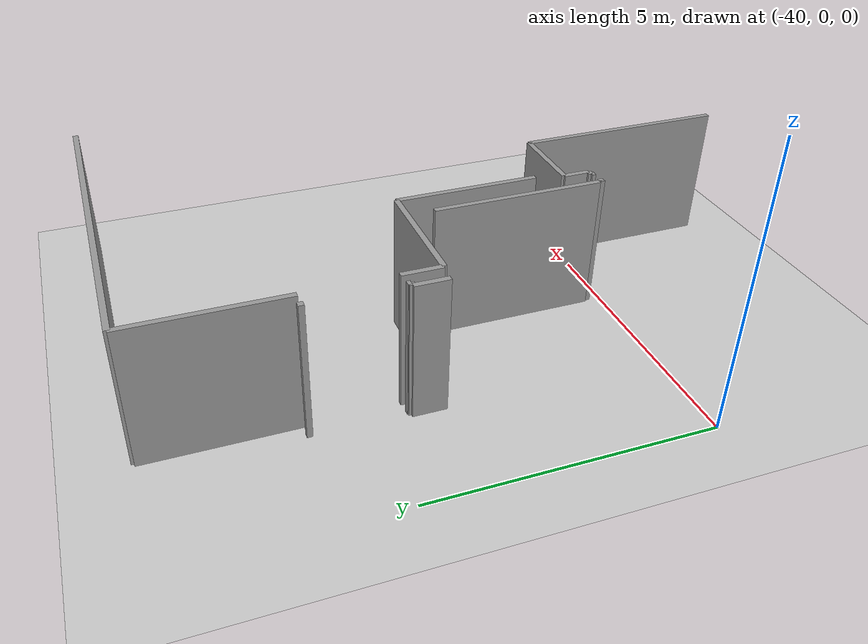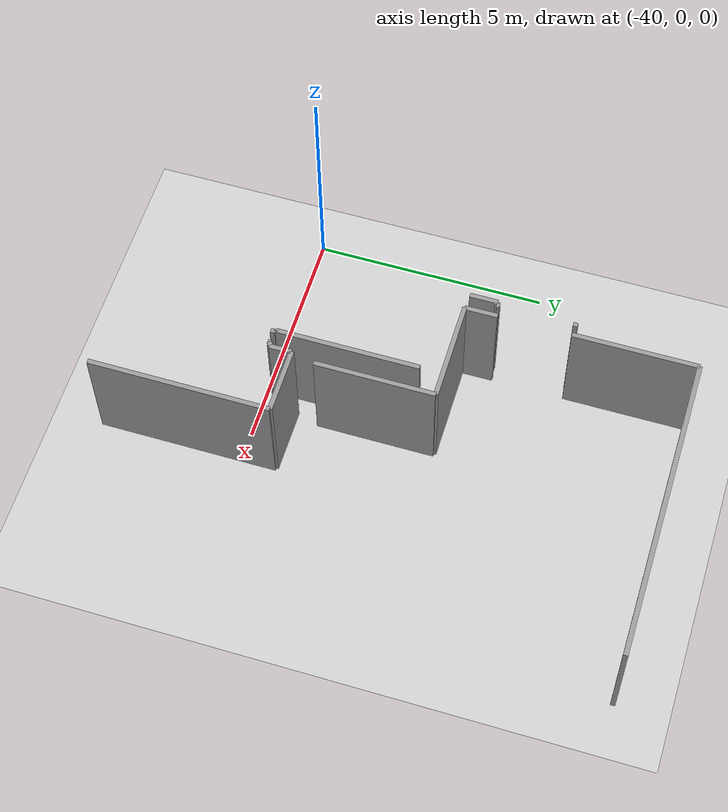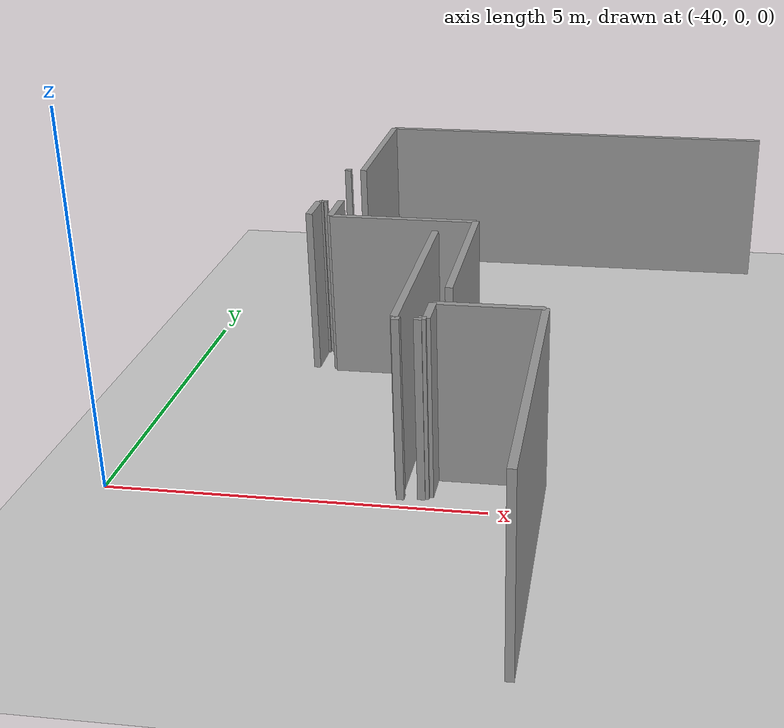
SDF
<sdf version="1.6">
 <world name="default">
  <model name="ground_plane">
   <static>1</static>
   <link name="link">
    <collision name="collision">
     <geometry><plane><normal>0 0 1</normal><size>100 100</size></plane></geometry>
     <surface><friction><ode><mu>100</mu><mu2>50</mu2></ode></friction></surface>
    </collision>
    <visual name="visual">
     <cast_shadows>0</cast_shadows>
     <geometry><plane><normal>0 0 1</normal><size>100 100</size></plane></geometry>
     <material>
      <script><uri>file://media/materials/scripts/gazebo.material</uri><name>Gazebo/Grey</name></script>
     </material>
    </visual>
   </link>
  </model>
  <model name="0510032258_A_40_1_105">
   <static>1</static>
   <link name="Wall_4">
    <collision name="Wall_4_Collision">
     <geometry><box><size>0.0973168004879 0.1 2.5</size></box></geometry>
     <pose>0.0486584002439 0 1.25 0 0 0</pose>
    </collision>
    <visual name="Wall_4_Visual">
     <pose>0.0486584002439 0 1.25 0 0 0</pose>
     <geometry><box><size>0.0973168004879 0.1 2.5</size></box></geometry>
     <material>
      <script><uri>file://media/materials/scripts/gazebo.material</uri><name>Gazebo/Grey</name></script>
      <ambient>1 1 1 1</ambient>
     </material>
    </visual>
    <pose>9.83420571196 -7.00312531761 0 0 0 -1.57079632679</pose>
   </link>
   <link name="Wall_5">
    <collision name="Wall_5_Collision">
     <geometry><box><size>0.0628874885659 0.1 2.5</size></box></geometry>
     <pose>0.031443744283 0 1.25 0 0 0</pose>
    </collision>
    <visual name="Wall_5_Visual">
     <pose>0.031443744283 0 1.25 0 0 0</pose>
     <geometry><box><size>0.0628874885659 0.1 2.5</size></box></geometry>
     <material>
      <script><uri>file://media/materials/scripts/gazebo.material</uri><name>Gazebo/Grey</name></script>
      <ambient>1 1 1 1</ambient>
     </material>
    </visual>
    <pose>9.83420571196 -8.65179388149 0 0 0 -1.57079632679</pose>
   </link>
   <link name="Wall_6">
    <collision name="Wall_6_Collision">
     <geometry><box><size>0.0802927126741 0.1 2.5</size></box></geometry>
     <pose>0.040146356337 0 1.25 0 0 0</pose>
    </collision>
    <visual name="Wall_6_Visual">
     <pose>0.040146356337 0 1.25 0 0 0</pose>
     <geometry><box><size>0.0802927126741 0.1 2.5</size></box></geometry>
     <material>
      <script><uri>file://media/materials/scripts/gazebo.material</uri><name>Gazebo/Grey</name></script>
      <ambient>1 1 1 1</ambient>
     </material>
    </visual>
    <pose>9.83420571196 -8.71468137006 0 0 0 3.14159265359</pose>
   </link>
   <link name="Wall_7">
    <collision name="Wall_7_Collision">
     <geometry><box><size>0.596859436935 0.1 2.5</size></box></geometry>
     <pose>0.298429718467 0 1.25 0 0 0</pose>
    </collision>
    <visual name="Wall_7_Visual">
     <pose>0.298429718467 0 1.25 0 0 0</pose>
     <geometry><box><size>0.596859436935 0.1 2.5</size></box></geometry>
     <material>
      <script><uri>file://media/materials/scripts/gazebo.material</uri><name>Gazebo/Grey</name></script>
      <ambient>1 1 1 1</ambient>
     </material>
    </visual>
    <pose>9.75391299929 -8.71468137006 0 0 0 -1.57079632679</pose>
   </link>
   <link name="Wall_24">
    <collision name="Wall_24_Collision">
     <geometry><box><size>3.06154080699 0.1 2.5</size></box></geometry>
     <pose>1.5307704035 0 1.25 0 0 0</pose>
    </collision>
    <visual name="Wall_24_Visual">
     <pose>1.5307704035 0 1.25 0 0 0</pose>
     <geometry><box><size>3.06154080699 0.1 2.5</size></box></geometry>
     <material>
      <script><uri>file://media/materials/scripts/gazebo.material</uri><name>Gazebo/Grey</name></script>
      <ambient>1 1 1 1</ambient>
     </material>
    </visual>
    <pose>11.7200680964 -9.80371480842 0 0 0 -1.57079632679</pose>
   </link>
   <link name="Wall_25">
    <collision name="Wall_25_Collision">
     <geometry><box><size>0.029601585527 0.1 2.5</size></box></geometry>
     <pose>0.0148007927635 0 1.25 0 0 0</pose>
    </collision>
    <visual name="Wall_25_Visual">
     <pose>0.0148007927635 0 1.25 0 0 0</pose>
     <geometry><box><size>0.029601585527 0.1 2.5</size></box></geometry>
     <material>
      <script><uri>file://media/materials/scripts/gazebo.material</uri><name>Gazebo/Grey</name></script>
      <ambient>1 1 1 1</ambient>
     </material>
    </visual>
    <pose>11.7200680964 -12.8652556154 0 0 0 0.0</pose>
   </link>
   <link name="Wall_26">
    <collision name="Wall_26_Collision">
     <geometry><box><size>0.102144526883 0.1 2.5</size></box></geometry>
     <pose>0.0510722634414 0 1.25 0 0 0</pose>
    </collision>
    <visual name="Wall_26_Visual">
     <pose>0.0510722634414 0 1.25 0 0 0</pose>
     <geometry><box><size>0.102144526883 0.1 2.5</size></box></geometry>
     <material>
      <script><uri>file://media/materials/scripts/gazebo.material</uri><name>Gazebo/Grey</name></script>
      <ambient>1 1 1 1</ambient>
     </material>
    </visual>
    <pose>11.7496696819 -12.8652556154 0 0 0 -1.57079632679</pose>
   </link>
   <link name="Wall_37">
    <collision name="Wall_37_Collision">
     <geometry><box><size>0.700528508995 0.1 2.5</size></box></geometry>
     <pose>0.350264254497 0 1.25 0 0 0</pose>
    </collision>
    <visual name="Wall_37_Visual">
     <pose>0.350264254497 0 1.25 0 0 0</pose>
     <geometry><box><size>0.700528508995 0.1 2.5</size></box></geometry>
     <material>
      <script><uri>file://media/materials/scripts/gazebo.material</uri><name>Gazebo/Grey</name></script>
      <ambient>1 1 1 1</ambient>
     </material>
    </visual>
    <pose>10.0820713487 -9.33008943998 0 0 0 1.57079632679</pose>
   </link>
   <link name="Wall_38">
    <collision name="Wall_38_Collision">
     <geometry><box><size>2.65664701697 0.1 2.5</size></box></geometry>
     <pose>1.32832350849 0 1.25 0 0 0</pose>
    </collision>
    <visual name="Wall_38_Visual">
     <pose>1.32832350849 0 1.25 0 0 0</pose>
     <geometry><box><size>2.65664701697 0.1 2.5</size></box></geometry>
     <material>
      <script><uri>file://media/materials/scripts/gazebo.material</uri><name>Gazebo/Grey</name></script>
      <ambient>1 1 1 1</ambient>
     </material>
    </visual>
    <pose>10.0820713487 -7.064488261 0 0 0 1.57079632679</pose>
   </link>
   <link name="Wall_39">
    <collision name="Wall_39_Collision">
     <geometry><box><size>6.52695904055 0.1 2.5</size></box></geometry>
     <pose>3.26347952028 0 1.25 0 0 0</pose>
    </collision>
    <visual name="Wall_39_Visual">
     <pose>3.26347952028 0 1.25 0 0 0</pose>
     <geometry><box><size>6.52695904055 0.1 2.5</size></box></geometry>
     <material>
      <script><uri>file://media/materials/scripts/gazebo.material</uri><name>Gazebo/Grey</name></script>
      <ambient>1 1 1 1</ambient>
     </material>
    </visual>
    <pose>10.0820713487 -4.40784124403 0 0 0 0.0</pose>
   </link>
   <link name="Wall_42">
    <collision name="Wall_42_Collision">
     <geometry><box><size>2.56250635227 0.1 2.5</size></box></geometry>
     <pose>1.28125317614 0 1.25 0 0 0</pose>
    </collision>
    <visual name="Wall_42_Visual">
     <pose>1.28125317614 0 1.25 0 0 0</pose>
     <geometry><box><size>2.56250635227 0.1 2.5</size></box></geometry>
     <material>
      <script><uri>file://media/materials/scripts/gazebo.material</uri><name>Gazebo/Grey</name></script>
      <ambient>1 1 1 1</ambient>
     </material>
    </visual>
    <pose>12.2363807297 -11.8863705661 0 0 0 1.57079632679</pose>
   </link>
   <link name="Wall_43">
    <collision name="Wall_43_Collision">
     <geometry><box><size>2.15431837542 0.1 2.5</size></box></geometry>
     <pose>1.07715918771 0 1.25 0 0 0</pose>
    </collision>
    <visual name="Wall_43_Visual">
     <pose>1.07715918771 0 1.25 0 0 0</pose>
     <geometry><box><size>2.15431837542 0.1 2.5</size></box></geometry>
     <material>
      <script><uri>file://media/materials/scripts/gazebo.material</uri><name>Gazebo/Grey</name></script>
      <ambient>1 1 1 1</ambient>
     </material>
    </visual>
    <pose>12.2363807297 -9.32386421384 0 0 0 -3.13870299955</pose>
   </link>
   <link name="Wall_47">
    <collision name="Wall_47_Collision">
     <geometry><box><size>0.0664447606464 0.1 2.5</size></box></geometry>
     <pose>0.0332223803232 0 1.25 0 0 0</pose>
    </collision>
    <visual name="Wall_47_Visual">
     <pose>0.0332223803232 0 1.25 0 0 0</pose>
     <geometry><box><size>0.0664447606464 0.1 2.5</size></box></geometry>
     <material>
      <script><uri>file://media/materials/scripts/gazebo.material</uri><name>Gazebo/Grey</name></script>
      <ambient>1 1 1 1</ambient>
     </material>
    </visual>
    <pose>12.0168462242 -12.9365281024 0 0 0 1.57079632679</pose>
   </link>
   <link name="Wall_48">
    <collision name="Wall_48_Collision">
     <geometry><box><size>0.0985872548023 0.1 2.5</size></box></geometry>
     <pose>0.0492936274012 0 1.25 0 0 0</pose>
    </collision>
    <visual name="Wall_48_Visual">
     <pose>0.0492936274012 0 1.25 0 0 0</pose>
     <geometry><box><size>0.0985872548023 0.1 2.5</size></box></geometry>
     <material>
      <script><uri>file://media/materials/scripts/gazebo.material</uri><name>Gazebo/Grey</name></script>
      <ambient>1 1 1 1</ambient>
     </material>
    </visual>
    <pose>12.0168462242 -12.8700833418 0 0 0 0.0</pose>
   </link>
   <link name="Wall_49">
    <collision name="Wall_49_Collision">
     <geometry><box><size>0.478071958532 0.1 2.5</size></box></geometry>
     <pose>0.239035979266 0 1.25 0 0 0</pose>
    </collision>
    <visual name="Wall_49_Visual">
     <pose>0.239035979266 0 1.25 0 0 0</pose>
     <geometry><box><size>0.478071958532 0.1 2.5</size></box></geometry>
     <material>
      <script><uri>file://media/materials/scripts/gazebo.material</uri><name>Gazebo/Grey</name></script>
      <ambient>1 1 1 1</ambient>
     </material>
    </visual>
    <pose>12.115433479 -12.8700833418 0 0 0 1.57079632679</pose>
   </link>
   <link name="Wall_50">
    <collision name="Wall_50_Collision">
     <geometry><box><size>1.39597520073 0.1 2.5</size></box></geometry>
     <pose>0.697987600366 0 1.25 0 0 0</pose>
    </collision>
    <visual name="Wall_50_Visual">
     <pose>0.697987600366 0 1.25 0 0 0</pose>
     <geometry><box><size>1.39597520073 0.1 2.5</size></box></geometry>
     <material>
      <script><uri>file://media/materials/scripts/gazebo.material</uri><name>Gazebo/Grey</name></script>
      <ambient>1 1 1 1</ambient>
     </material>
    </visual>
    <pose>12.115433479 -12.3920113833 0 0 0 0.0</pose>
   </link>
   <link name="Wall_51">
    <collision name="Wall_51_Collision">
     <geometry><box><size>3.87831588576 0.1 2.5</size></box></geometry>
     <pose>1.93915794288 0 1.25 0 0 0</pose>
    </collision>
    <visual name="Wall_51_Visual">
     <pose>1.93915794288 0 1.25 0 0 0</pose>
     <geometry><box><size>3.87831588576 0.1 2.5</size></box></geometry>
     <material>
      <script><uri>file://media/materials/scripts/gazebo.material</uri><name>Gazebo/Grey</name></script>
      <ambient>1 1 1 1</ambient>
     </material>
    </visual>
    <pose>13.5114086797 -12.3920113833 0 0 0 -1.57079632679</pose>
   </link>
   <pose>-47.9 13.1512145543 0 0 0 0</pose>
  </model>
 </world>
</sdf>
